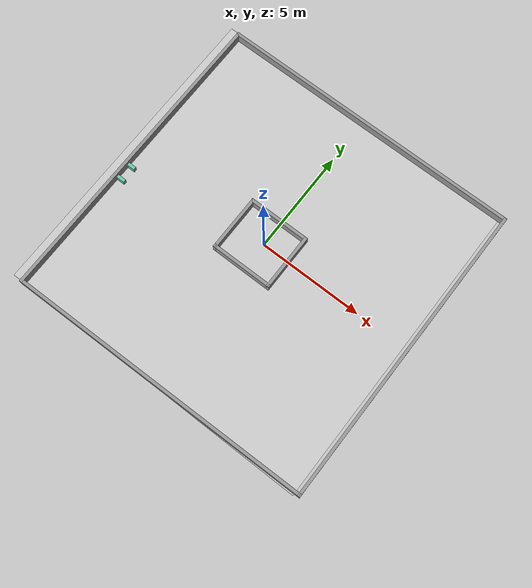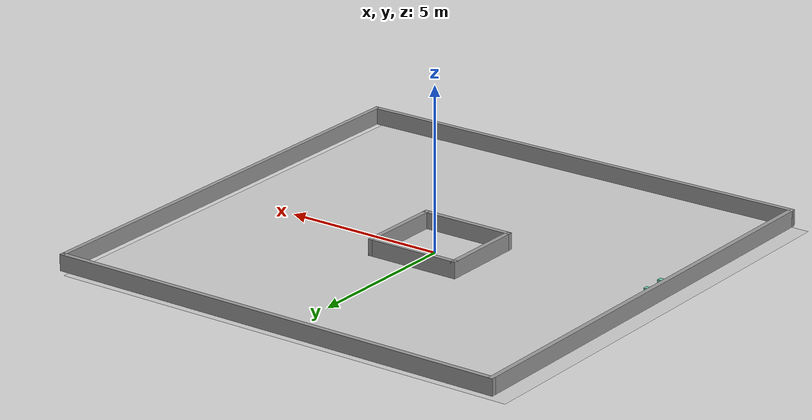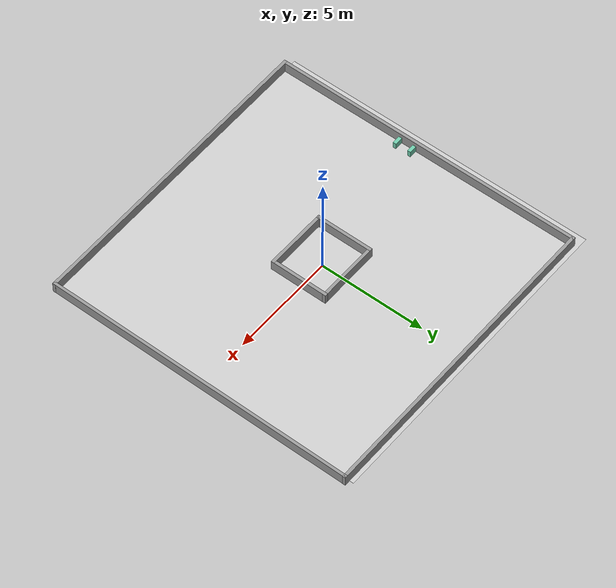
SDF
<sdf version="1.7">
 <world name="default">
  <light name="sun" type="directional">
   <pose>0 0 10 0 -0 0</pose>
   <diffuse>0.8 0.8 0.8 1</diffuse>
   <specular>0.2 0.2 0.2 1</specular>
   <attenuation>
    <range>1000</range>
    <constant>0.9</constant>
    <linear>0.01</linear>
    <quadratic>0.001</quadratic>
   </attenuation>
   <direction>-0.5 0.1 -0.9</direction>
   <spot><inner_angle>0</inner_angle><outer_angle>0</outer_angle><falloff>0</falloff></spot>
  </light>
  <gravity>0 0 -9.8</gravity>
  <magnetic_field>6e-06 2.3e-05 -4.2e-05</magnetic_field>
  <atmosphere type="adiabatic"/>
  <physics type="ode">
   <max_step_size>0.001</max_step_size>
   <real_time_factor>1</real_time_factor>
   <real_time_update_rate>1000</real_time_update_rate>
  </physics>
  <scene><ambient>0.4 0.4 0.4 1</ambient><background>0.7 0.7 0.7 1</background><shadows>1</shadows></scene>
  <spherical_coordinates>
   <surface_model>EARTH_WGS84</surface_model>
   <latitude_deg>0</latitude_deg>
   <longitude_deg>0</longitude_deg>
   <elevation>0</elevation>
   <heading_deg>0</heading_deg>
  </spherical_coordinates>
  <model name="my_ground_plane">
   <static>1</static>
   <link name="link">
    <collision name="collision">
     <geometry><plane><normal>0 0 1</normal><size>15 15</size></plane></geometry>
     <surface><friction><ode><mu>100</mu><mu2>50</mu2></ode></friction></surface>
    </collision>
    <visual name="visual">
     <cast_shadows>0</cast_shadows>
     <geometry><plane><normal>0 0 1</normal><size>15 15</size></plane></geometry>
     <material>
      <script>
       <uri>model://my_ground_plane/materials/scripts</uri>
       <uri>model://my_ground_plane/materials/textures/</uri>
       <name>MyGroundPlane/Image</name>
      </script>
      <shininess>0.9</shininess>
     </material>
    </visual>
   </link>
   <pose>-0.124808 -0.102793 0 0 -0 0</pose>
  </model>
  <model name="wro">
   <pose>-2.83546 -0.1496 0 0 -0 0</pose>
   <link name="Wall_15">
    <collision name="Wall_15_Collision">
     <geometry><box><size>3 0.15 0.5</size></box></geometry>
     <pose>0 0 0.25 0 -0 0</pose>
    </collision>
    <visual name="Wall_15_Visual">
     <pose>0 0 0.25 0 -0 0</pose>
     <geometry><box><size>3 0.15 0.5</size></box></geometry>
     <material>
      <script><uri>file://media/materials/scripts/gazebo.material</uri><name>Gazebo/Grey</name></script>
      <ambient>1 1 1 1</ambient>
     </material>
     <meta><layer>0</layer></meta>
    </visual>
    <pose>2.742 -1.2645 0 0 -0 0</pose>
   </link>
   <link name="Wall_16">
    <collision name="Wall_16_Collision">
     <geometry><box><size>2.75 0.15 0.5</size></box></geometry>
     <pose>0 0 0.25 0 -0 0</pose>
    </collision>
    <visual name="Wall_16_Visual">
     <pose>0 0 0.25 0 -0 0</pose>
     <geometry><box><size>2.75 0.15 0.5</size></box></geometry>
     <material>
      <script><uri>file://media/materials/scripts/gazebo.material</uri><name>Gazebo/Grey</name></script>
      <ambient>1 1 1 1</ambient>
     </material>
     <meta><layer>0</layer></meta>
    </visual>
    <pose>4.167 0.0355 0 0 -0 1.5708</pose>
   </link>
   <link name="Wall_17">
    <collision name="Wall_17_Collision">
     <geometry><box><size>3 0.15 0.5</size></box></geometry>
     <pose>0 0 0.25 0 -0 0</pose>
    </collision>
    <visual name="Wall_17_Visual">
     <pose>0 0 0.25 0 -0 0</pose>
     <geometry><box><size>3 0.15 0.5</size></box></geometry>
     <material>
      <script><uri>file://media/materials/scripts/gazebo.material</uri><name>Gazebo/Grey</name></script>
      <ambient>1 1 1 1</ambient>
     </material>
     <meta><layer>0</layer></meta>
    </visual>
    <pose>2.742 1.3355 0 0 -0 3.14159</pose>
   </link>
   <link name="Wall_19">
    <collision name="Wall_19_Collision">
     <geometry><box><size>2.75 0.15 0.5</size></box></geometry>
     <pose>0 0 0.25 0 -0 0</pose>
    </collision>
    <visual name="Wall_19_Visual">
     <pose>0 0 0.25 0 -0 0</pose>
     <geometry><box><size>2.75 0.15 0.5</size></box></geometry>
     <material>
      <script><uri>file://media/materials/scripts/gazebo.material</uri><name>Gazebo/Grey</name></script>
      <ambient>1 1 1 1</ambient>
     </material>
     <meta><layer>0</layer></meta>
    </visual>
    <pose>1.317 0.0355 0 0 -0 1.5708</pose>
   </link>
   <link name="Wall_23">
    <collision name="Wall_23_Collision">
     <geometry><box><size>0.5 0.15 0.3</size></box></geometry>
     <pose>0 0 0.15 0 -0 0</pose>
    </collision>
    <visual name="Wall_23_Visual">
     <pose>0 0 0.15 0 -0 0</pose>
     <geometry><box><size>0.5 0.15 0.3</size></box></geometry>
     <material>
      <script><uri>file://media/materials/scripts/gazebo.material</uri><name>Gazebo/Grey</name></script>
      <ambient>0.435294 0.796078 0.67451 1</ambient>
     </material>
     <meta><layer>0</layer></meta>
    </visual>
    <pose>-3.962 -1.3355 0 0 -0 0</pose>
   </link>
   <link name="Wall_25">
    <collision name="Wall_25_Collision">
     <geometry><box><size>0.5 0.15 0.3</size></box></geometry>
     <pose>0 0 0.15 0 -0 0</pose>
    </collision>
    <visual name="Wall_25_Visual">
     <pose>0 0 0.15 0 -0 0</pose>
     <geometry><box><size>0.5 0.15 0.3</size></box></geometry>
     <material>
      <script><uri>file://media/materials/scripts/gazebo.material</uri><name>Gazebo/Grey</name></script>
      <ambient>0.435294 0.796078 0.67451 1</ambient>
     </material>
     <meta><layer>0</layer></meta>
    </visual>
    <pose>-3.992 -0.6115 0 0 -0 0</pose>
   </link>
   <static>1</static>
  </model>
  <model name="Untitled">
   <pose>0.281207 -0.235324 0 0 -0 0</pose>
   <link name="Wall_4">
    <collision name="Wall_4_Collision">
     <geometry><box><size>14.7509 0.15 0.5</size></box></geometry>
     <pose>0 0 0.25 0 -0 0</pose>
    </collision>
    <visual name="Wall_4_Visual">
     <pose>0 0 0.25 0 -0 0</pose>
     <geometry><box><size>14.7509 0.15 0.5</size></box></geometry>
     <material>
      <script><uri>file://media/materials/scripts/gazebo.material</uri><name>Gazebo/Grey</name></script>
      <ambient>1 1 1 1</ambient>
     </material>
     <meta><layer>0</layer></meta>
    </visual>
    <pose>-0 -7.29958 0 0 -0 0.011164</pose>
   </link>
   <link name="Wall_5">
    <collision name="Wall_5_Collision">
     <geometry><box><size>14.74 0.14 0.5</size></box></geometry>
     <pose>0 0 0.25 0 -0 0</pose>
    </collision>
    <visual name="Wall_5_Visual">
     <pose>0 0 0.25 0 -0 0</pose>
     <geometry><box><size>14.74 0.14 0.5</size></box></geometry>
     <material>
      <script><uri>file://media/materials/scripts/gazebo.material</uri><name>Gazebo/Grey</name></script>
      <ambient>1 1 1 1</ambient>
     </material>
     <meta><layer>0</layer></meta>
    </visual>
    <pose>7.3 0.081916 0 0 -0 1.5708</pose>
   </link>
   <link name="Wall_6">
    <collision name="Wall_6_Collision">
     <geometry><box><size>14.75 0.15 0.5</size></box></geometry>
     <pose>0 0 0.25 0 -0 0</pose>
    </collision>
    <visual name="Wall_6_Visual">
     <pose>0 0 0.25 0 -0 0</pose>
     <geometry><box><size>14.75 0.15 0.5</size></box></geometry>
     <material>
      <script><uri>file://media/materials/scripts/gazebo.material</uri><name>Gazebo/Grey</name></script>
      <ambient>1 1 1 1</ambient>
     </material>
     <meta><layer>0</layer></meta>
    </visual>
    <pose>-0 7.38192 0 0 -0 3.14159</pose>
   </link>
   <link name="Wall_9">
    <collision name="Wall_9_Collision">
     <geometry><box><size>14.9127 0.15 0.5</size></box></geometry>
     <pose>0 0 0.25 0 -0 0</pose>
    </collision>
    <visual name="Wall_9_Visual">
     <pose>0 0 0.25 0 -0 0</pose>
     <geometry><box><size>14.9127 0.15 0.5</size></box></geometry>
     <material>
      <script><uri>file://media/materials/scripts/gazebo.material</uri><name>Gazebo/Grey</name></script>
      <ambient>1 1 1 1</ambient>
     </material>
     <meta><layer>0</layer></meta>
    </visual>
    <pose>-7.3 0.000416 0 0 -0 -1.5708</pose>
   </link>
   <static>1</static>
  </model>
  <light name="user_point_light_0" type="point">
   <pose>-0.887459 4.84775 1 0 -0 0</pose>
   <diffuse>0.5 0.5 0.5 1</diffuse>
   <specular>0.1 0.1 0.1 1</specular>
   <attenuation>
    <range>20</range>
    <constant>0.5</constant>
    <linear>0.01</linear>
    <quadratic>0.001</quadratic>
   </attenuation>
   <cast_shadows>0</cast_shadows>
   <direction>0 0 -1</direction>
  </light>
  <light name="user_point_light_1" type="point">
   <pose>-5.32583 -0.180594 1 0 -0 0</pose>
   <diffuse>0.5 0.5 0.5 1</diffuse>
   <specular>0.1 0.1 0.1 1</specular>
   <attenuation>
    <range>20</range>
    <constant>0.5</constant>
    <linear>0.01</linear>
    <quadratic>0.001</quadratic>
   </attenuation>
   <cast_shadows>0</cast_shadows>
   <direction>0 0 -1</direction>
  </light>
  <light name="user_point_light_2" type="point">
   <pose>0.348518 -5.12389 1 0 -0 0</pose>
   <diffuse>0.5 0.5 0.5 1</diffuse>
   <specular>0.1 0.1 0.1 1</specular>
   <attenuation>
    <range>20</range>
    <constant>0.5</constant>
    <linear>0.01</linear>
    <quadratic>0.001</quadratic>
   </attenuation>
   <cast_shadows>0</cast_shadows>
   <direction>0 0 -1</direction>
  </light>
  <light name="user_point_light_3" type="point">
   <pose>5.15205 -0.067534 1 0 -0 0</pose>
   <diffuse>0.5 0.5 0.5 1</diffuse>
   <specular>0.1 0.1 0.1 1</specular>
   <attenuation>
    <range>20</range>
    <constant>0.5</constant>
    <linear>0.01</linear>
    <quadratic>0.001</quadratic>
   </attenuation>
   <cast_shadows>0</cast_shadows>
   <direction>0 0 -1</direction>
  </light>
  <light name="user_point_light_4" type="point">
   <pose>6.35101 5.99922 1 0 -0 0</pose>
   <diffuse>0.5 0.5 0.5 1</diffuse>
   <specular>0.1 0.1 0.1 1</specular>
   <attenuation>
    <range>20</range>
    <constant>0.5</constant>
    <linear>0.01</linear>
    <quadratic>0.001</quadratic>
   </attenuation>
   <cast_shadows>0</cast_shadows>
   <direction>0 0 -1</direction>
  </light>
  <light name="user_point_light_5" type="point">
   <pose>6.45276 -6.00389 1 0 -0 0</pose>
   <diffuse>0.5 0.5 0.5 1</diffuse>
   <specular>0.1 0.1 0.1 1</specular>
   <attenuation>
    <range>20</range>
    <constant>0.5</constant>
    <linear>0.01</linear>
    <quadratic>0.001</quadratic>
   </attenuation>
   <cast_shadows>0</cast_shadows>
   <direction>0 0 -1</direction>
  </light>
  <light name="user_point_light_6" type="point">
   <pose>-4.94027 -6.30925 1 0 -0 0</pose>
   <diffuse>0.5 0.5 0.5 1</diffuse>
   <specular>0.1 0.1 0.1 1</specular>
   <attenuation>
    <range>20</range>
    <constant>0.5</constant>
    <linear>0.01</linear>
    <quadratic>0.001</quadratic>
   </attenuation>
   <cast_shadows>0</cast_shadows>
   <direction>0 0 -1</direction>
  </light>
  <light name="user_point_light_7" type="point">
   <pose>-5.6016 5.38901 1 0 -0 0</pose>
   <diffuse>0.5 0.5 0.5 1</diffuse>
   <specular>0.1 0.1 0.1 1</specular>
   <attenuation>
    <range>20</range>
    <constant>0.5</constant>
    <linear>0.01</linear>
    <quadratic>0.001</quadratic>
   </attenuation>
   <cast_shadows>0</cast_shadows>
   <direction>0 0 -1</direction>
  </light>
 </world>
</sdf>
